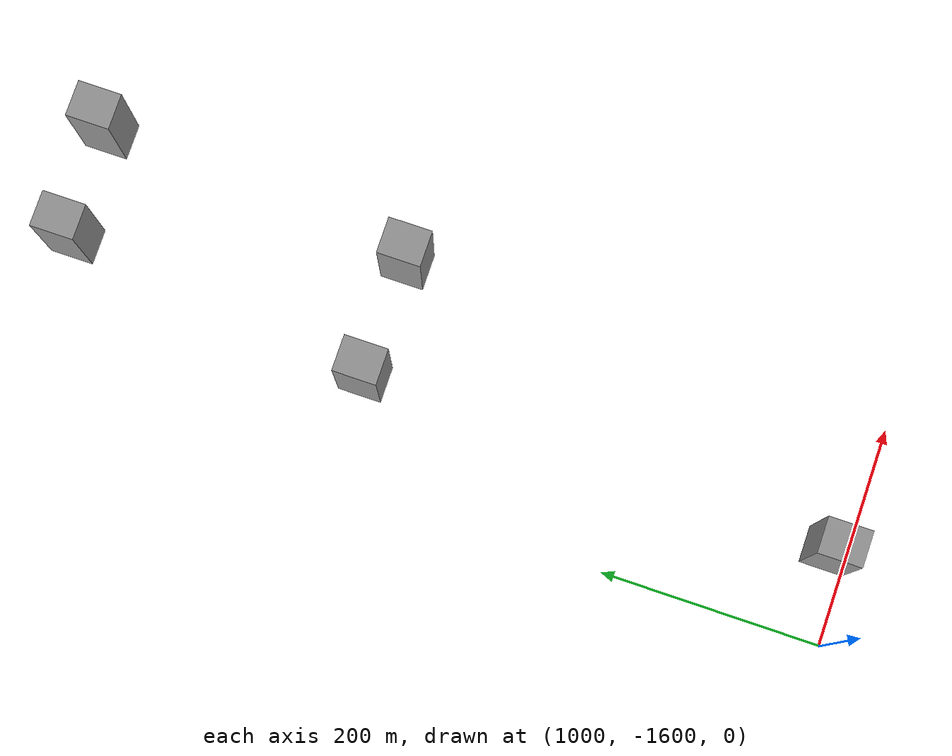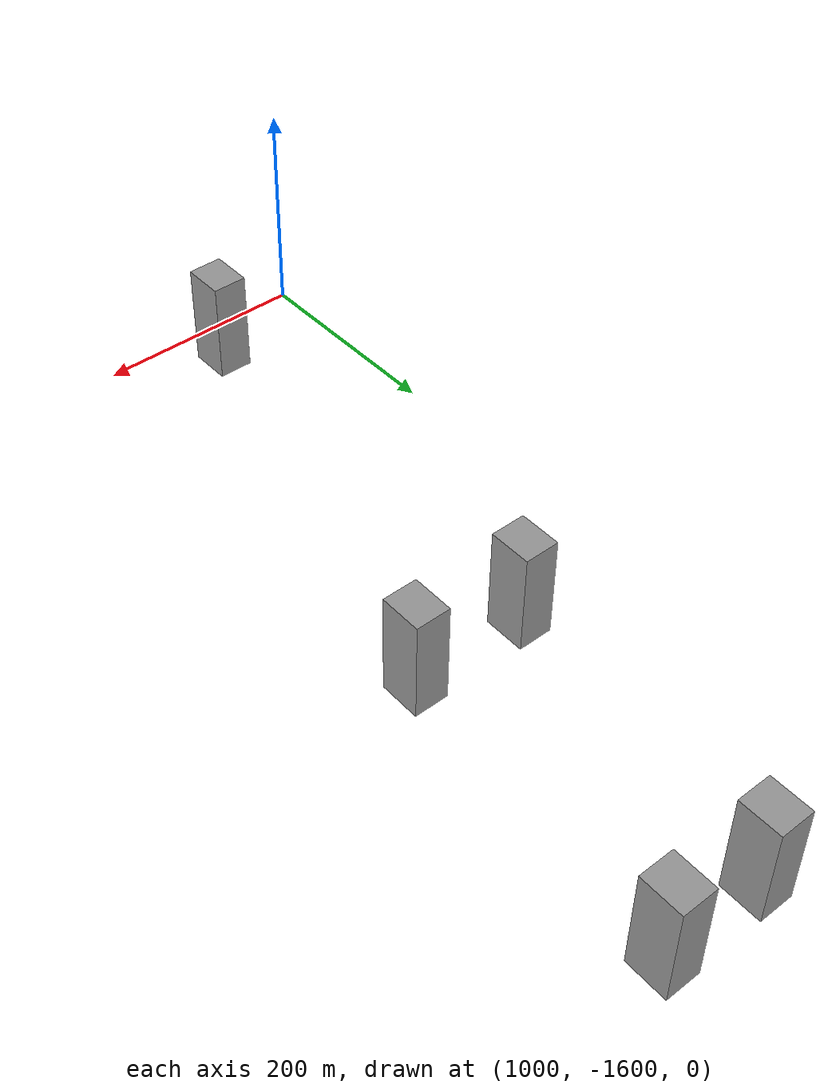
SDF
<sdf version="1.7">
 <world name="default">
  <model name="huge_building_12">
   <link name="link">
    <inertial>
     <mass>137299</mass>
     <inertia>
      <ixx>1.37911e+08</ixx>
      <ixy>0</ixy>
      <ixz>0</ixz>
      <iyy>1.32035e+08</iyy>
      <iyz>0</iyz>
      <izz>3.13216e+07</izz>
     </inertia>
    </inertial>
    <visual name="visual">
     <geometry><box><size>33.3468 40.3177 102.117</size></box></geometry>
     <material>
      <script><name>Gazebo/Grey</name><uri>file://media/materials/scripts/gazebo.material</uri></script>
      <shader type="pixel"/>
     </material>
    </visual>
    <collision name="collision">
     <geometry><box><size>33.3468 40.3177 102.117</size></box></geometry>
     <surface>
      <friction>
       <ode><mu>1</mu><mu2>1</mu2><fdir1>0 0 0</fdir1><slip1>0</slip1><slip2>0</slip2></ode>
       <torsional>
        <coefficient>1</coefficient>
        <patch_radius>0</patch_radius>
        <surface_radius>0</surface_radius>
        <use_patch_radius>1</use_patch_radius>
        <ode><slip>0</slip></ode>
       </torsional>
      </friction>
      <bounce><restitution_coefficient>0</restitution_coefficient><threshold>1e+06</threshold></bounce>
      <contact>
       <collide_without_contact>0</collide_without_contact>
       <collide_without_contact_bitmask>1</collide_without_contact_bitmask>
       <collide_bitmask>1</collide_bitmask>
       <ode>
        <soft_cfm>0</soft_cfm>
        <soft_erp>0.2</soft_erp>
        <kp>1e+13</kp>
        <kd>1</kd>
        <max_vel>0.01</max_vel>
        <min_depth>0</min_depth>
       </ode>
       <bullet>
        <split_impulse>1</split_impulse>
        <split_impulse_penetration_threshold>-0.01</split_impulse_penetration_threshold>
        <soft_cfm>0</soft_cfm>
        <soft_erp>0.2</soft_erp>
        <kp>1e+13</kp>
        <kd>1</kd>
       </bullet>
      </contact>
     </surface>
    </collision>
   </link>
   <static>0</static>
   <pose>1085.29 -1585.35 21 0 -0 0</pose>
  </model>
  <model name="huge_building_35">
   <link name="link">
    <inertial>
     <mass>137299</mass>
     <inertia>
      <ixx>1.37911e+08</ixx>
      <ixy>0</ixy>
      <ixz>0</ixz>
      <iyy>1.32035e+08</iyy>
      <iyz>0</iyz>
      <izz>3.13216e+07</izz>
     </inertia>
    </inertial>
    <visual name="visual">
     <geometry><box><size>33.3468 40.3177 102.117</size></box></geometry>
     <material>
      <script><name>Gazebo/Grey</name><uri>file://media/materials/scripts/gazebo.material</uri></script>
      <shader type="pixel"/>
     </material>
    </visual>
    <collision name="collision">
     <geometry><box><size>33.3468 40.3177 102.117</size></box></geometry>
     <surface>
      <friction>
       <ode><mu>1</mu><mu2>1</mu2><fdir1>0 0 0</fdir1><slip1>0</slip1><slip2>0</slip2></ode>
       <torsional>
        <coefficient>1</coefficient>
        <patch_radius>0</patch_radius>
        <surface_radius>0</surface_radius>
        <use_patch_radius>1</use_patch_radius>
        <ode><slip>0</slip></ode>
       </torsional>
      </friction>
      <bounce><restitution_coefficient>0</restitution_coefficient><threshold>1e+06</threshold></bounce>
      <contact>
       <collide_without_contact>0</collide_without_contact>
       <collide_without_contact_bitmask>1</collide_without_contact_bitmask>
       <collide_bitmask>1</collide_bitmask>
       <ode>
        <soft_cfm>0</soft_cfm>
        <soft_erp>0.2</soft_erp>
        <kp>1e+13</kp>
        <kd>1</kd>
        <max_vel>0.01</max_vel>
        <min_depth>0</min_depth>
       </ode>
       <bullet>
        <split_impulse>1</split_impulse>
        <split_impulse_penetration_threshold>-0.01</split_impulse_penetration_threshold>
        <soft_cfm>0</soft_cfm>
        <soft_erp>0.2</soft_erp>
        <kp>1e+13</kp>
        <kd>1</kd>
       </bullet>
      </contact>
     </surface>
    </collision>
   </link>
   <static>0</static>
   <pose>1212.32 -1146.2 16 0 -0 0</pose>
  </model>
  <model name="huge_building_36">
   <link name="link">
    <inertial>
     <mass>137299</mass>
     <inertia>
      <ixx>1.37911e+08</ixx>
      <ixy>0</ixy>
      <ixz>0</ixz>
      <iyy>1.32035e+08</iyy>
      <iyz>0</iyz>
      <izz>3.13216e+07</izz>
     </inertia>
    </inertial>
    <visual name="visual">
     <geometry><box><size>33.3468 40.3177 102.117</size></box></geometry>
     <material>
      <script><name>Gazebo/Grey</name><uri>file://media/materials/scripts/gazebo.material</uri></script>
      <shader type="pixel"/>
     </material>
    </visual>
    <collision name="collision">
     <geometry><box><size>33.3468 40.3177 102.117</size></box></geometry>
     <surface>
      <friction>
       <ode><mu>1</mu><mu2>1</mu2><fdir1>0 0 0</fdir1><slip1>0</slip1><slip2>0</slip2></ode>
       <torsional>
        <coefficient>1</coefficient>
        <patch_radius>0</patch_radius>
        <surface_radius>0</surface_radius>
        <use_patch_radius>1</use_patch_radius>
        <ode><slip>0</slip></ode>
       </torsional>
      </friction>
      <bounce><restitution_coefficient>0</restitution_coefficient><threshold>1e+06</threshold></bounce>
      <contact>
       <collide_without_contact>0</collide_without_contact>
       <collide_without_contact_bitmask>1</collide_without_contact_bitmask>
       <collide_bitmask>1</collide_bitmask>
       <ode>
        <soft_cfm>0</soft_cfm>
        <soft_erp>0.2</soft_erp>
        <kp>1e+13</kp>
        <kd>1</kd>
        <max_vel>0.01</max_vel>
        <min_depth>0</min_depth>
       </ode>
       <bullet>
        <split_impulse>1</split_impulse>
        <split_impulse_penetration_threshold>-0.01</split_impulse_penetration_threshold>
        <soft_cfm>0</soft_cfm>
        <soft_erp>0.2</soft_erp>
        <kp>1e+13</kp>
        <kd>1</kd>
       </bullet>
      </contact>
     </surface>
    </collision>
   </link>
   <static>0</static>
   <pose>1101.49 -1144.01 18 0 -0 0</pose>
  </model>
  <model name="huge_building_40">
   <link name="link">
    <inertial>
     <mass>137299</mass>
     <inertia>
      <ixx>1.37911e+08</ixx>
      <ixy>0</ixy>
      <ixz>0</ixz>
      <iyy>1.32035e+08</iyy>
      <iyz>0</iyz>
      <izz>3.13216e+07</izz>
     </inertia>
    </inertial>
    <visual name="visual">
     <geometry><box><size>33.3468 40.3177 102.117</size></box></geometry>
     <material>
      <script><name>Gazebo/Grey</name><uri>file://media/materials/scripts/gazebo.material</uri></script>
      <shader type="pixel"/>
     </material>
    </visual>
    <collision name="collision">
     <geometry><box><size>33.3468 40.3177 102.117</size></box></geometry>
     <surface>
      <friction>
       <ode><mu>1</mu><mu2>1</mu2><fdir1>0 0 0</fdir1><slip1>0</slip1><slip2>0</slip2></ode>
       <torsional>
        <coefficient>1</coefficient>
        <patch_radius>0</patch_radius>
        <surface_radius>0</surface_radius>
        <use_patch_radius>1</use_patch_radius>
        <ode><slip>0</slip></ode>
       </torsional>
      </friction>
      <bounce><restitution_coefficient>0</restitution_coefficient><threshold>1e+06</threshold></bounce>
      <contact>
       <collide_without_contact>0</collide_without_contact>
       <collide_without_contact_bitmask>1</collide_without_contact_bitmask>
       <collide_bitmask>1</collide_bitmask>
       <ode>
        <soft_cfm>0</soft_cfm>
        <soft_erp>0.2</soft_erp>
        <kp>1e+13</kp>
        <kd>1</kd>
        <max_vel>0.01</max_vel>
        <min_depth>0</min_depth>
       </ode>
       <bullet>
        <split_impulse>1</split_impulse>
        <split_impulse_penetration_threshold>-0.01</split_impulse_penetration_threshold>
        <soft_cfm>0</soft_cfm>
        <soft_erp>0.2</soft_erp>
        <kp>1e+13</kp>
        <kd>1</kd>
       </bullet>
      </contact>
     </surface>
    </collision>
   </link>
   <static>0</static>
   <pose>1139.46 -849.906 7 0 -0 0</pose>
  </model>
  <model name="huge_building_41">
   <link name="link">
    <inertial>
     <mass>137299</mass>
     <inertia>
      <ixx>1.37911e+08</ixx>
      <ixy>0</ixy>
      <ixz>0</ixz>
      <iyy>1.32035e+08</iyy>
      <iyz>0</iyz>
      <izz>3.13216e+07</izz>
     </inertia>
    </inertial>
    <visual name="visual">
     <geometry><box><size>33.3468 40.3177 102.117</size></box></geometry>
     <material>
      <script><name>Gazebo/Grey</name><uri>file://media/materials/scripts/gazebo.material</uri></script>
      <shader type="pixel"/>
     </material>
    </visual>
    <collision name="collision">
     <geometry><box><size>33.3468 40.3177 102.117</size></box></geometry>
     <surface>
      <friction>
       <ode><mu>1</mu><mu2>1</mu2><fdir1>0 0 0</fdir1><slip1>0</slip1><slip2>0</slip2></ode>
       <torsional>
        <coefficient>1</coefficient>
        <patch_radius>0</patch_radius>
        <surface_radius>0</surface_radius>
        <use_patch_radius>1</use_patch_radius>
        <ode><slip>0</slip></ode>
       </torsional>
      </friction>
      <bounce><restitution_coefficient>0</restitution_coefficient><threshold>1e+06</threshold></bounce>
      <contact>
       <collide_without_contact>0</collide_without_contact>
       <collide_without_contact_bitmask>1</collide_without_contact_bitmask>
       <collide_bitmask>1</collide_bitmask>
       <ode>
        <soft_cfm>0</soft_cfm>
        <soft_erp>0.2</soft_erp>
        <kp>1e+13</kp>
        <kd>1</kd>
        <max_vel>0.01</max_vel>
        <min_depth>0</min_depth>
       </ode>
       <bullet>
        <split_impulse>1</split_impulse>
        <split_impulse_penetration_threshold>-0.01</split_impulse_penetration_threshold>
        <soft_cfm>0</soft_cfm>
        <soft_erp>0.2</soft_erp>
        <kp>1e+13</kp>
        <kd>1</kd>
       </bullet>
      </contact>
     </surface>
    </collision>
   </link>
   <static>0</static>
   <pose>1241.35 -847.032 15 0 -0 0</pose>
  </model>
 </world>
</sdf>
